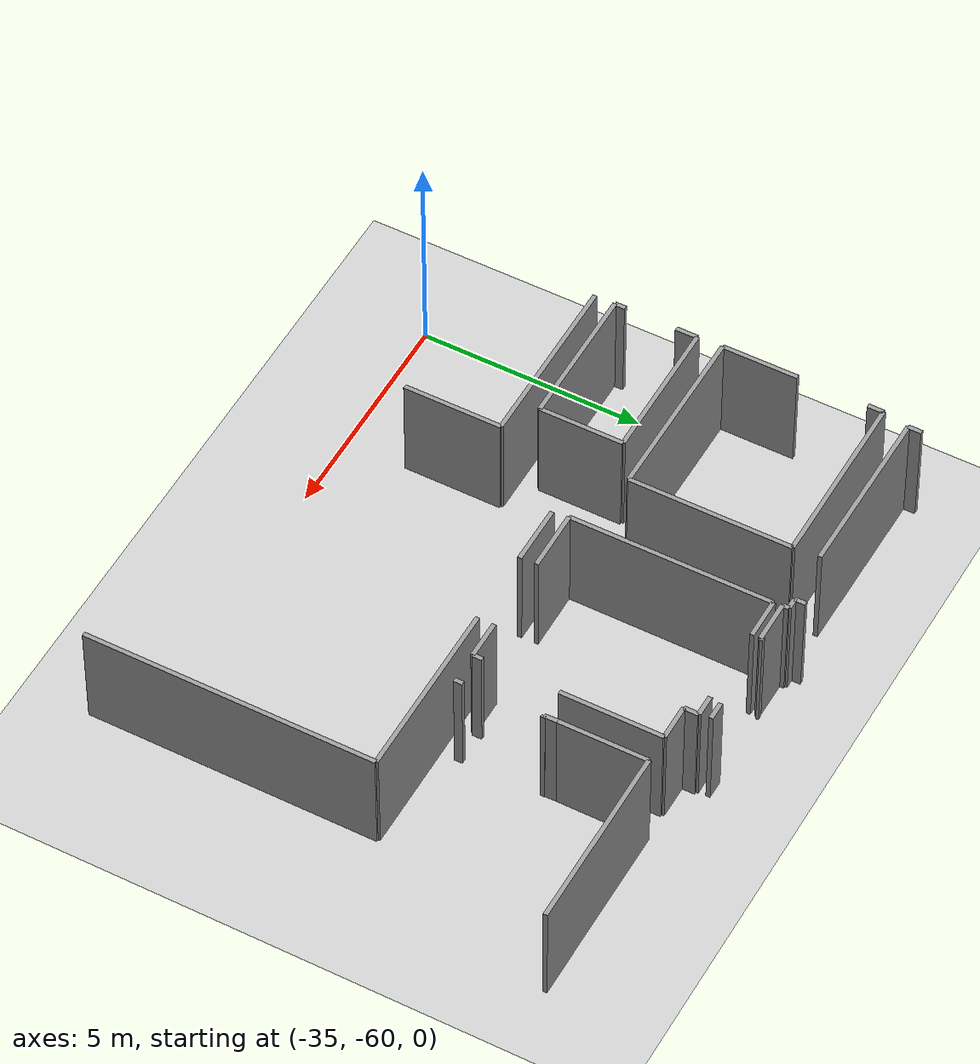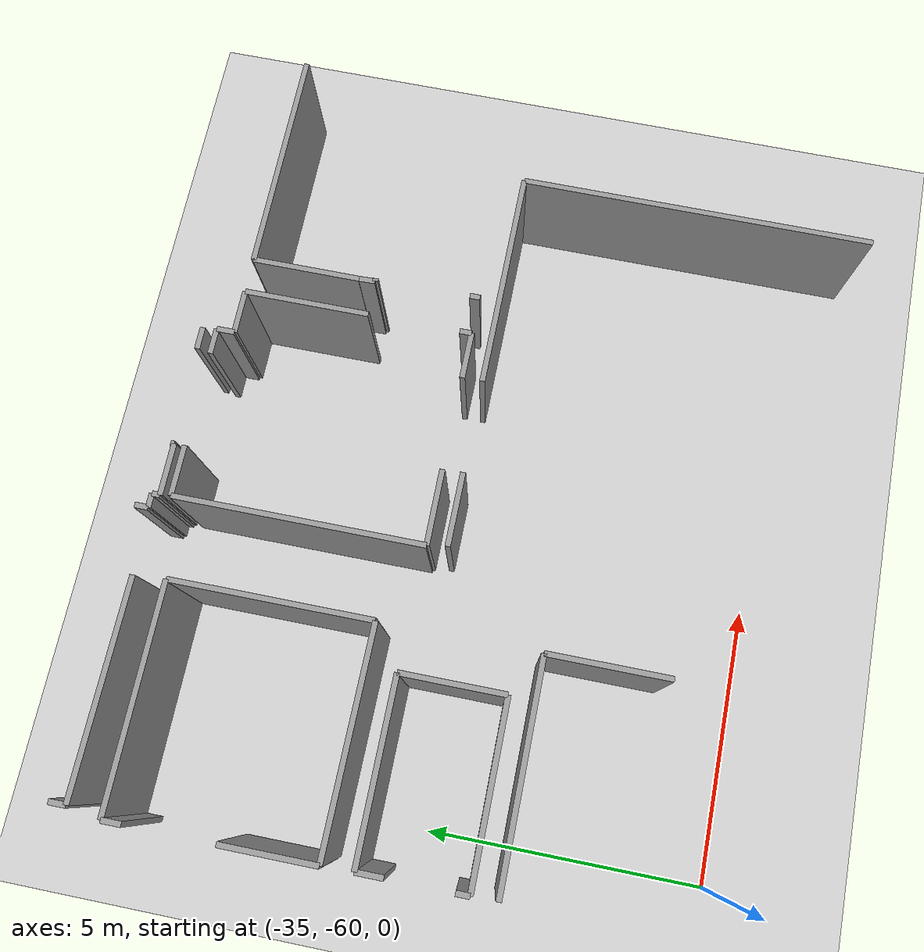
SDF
<sdf version="1.6">
 <world name="default">
  <model name="ground_plane">
   <static>1</static>
   <link name="link">
    <collision name="collision">
     <geometry><plane><normal>0 0 1</normal><size>100 100</size></plane></geometry>
     <surface><friction><ode><mu>100</mu><mu2>50</mu2></ode></friction></surface>
    </collision>
    <visual name="visual">
     <cast_shadows>0</cast_shadows>
     <geometry><plane><normal>0 0 1</normal><size>100 100</size></plane></geometry>
     <material>
      <script><uri>file://media/materials/scripts/gazebo.material</uri><name>Gazebo/Grey</name></script>
     </material>
    </visual>
   </link>
  </model>
  <model name="50036894">
   <static>1</static>
   <link name="Wall_139">
    <collision name="Wall_139_Collision">
     <geometry><box><size>0.302544237268 0.1 2.5</size></box></geometry>
     <pose>0.151272118634 0 1.25 0 0 0</pose>
    </collision>
    <visual name="Wall_139_Visual">
     <pose>0.151272118634 0 1.25 0 0 0</pose>
     <geometry><box><size>0.302544237268 0.1 2.5</size></box></geometry>
     <material>
      <script><uri>file://media/materials/scripts/gazebo.material</uri><name>Gazebo/Grey</name></script>
      <ambient>1 1 1 1</ambient>
     </material>
    </visual>
    <pose>87.1839674378 -116.604809515 0 0 0 1.57079632679</pose>
   </link>
   <link name="Wall_145">
    <collision name="Wall_145_Collision">
     <geometry><box><size>3.84345560179 0.1 2.5</size></box></geometry>
     <pose>1.92172780089 0 1.25 0 0 0</pose>
    </collision>
    <visual name="Wall_145_Visual">
     <pose>1.92172780089 0 1.25 0 0 0</pose>
     <geometry><box><size>3.84345560179 0.1 2.5</size></box></geometry>
     <material>
      <script><uri>file://media/materials/scripts/gazebo.material</uri><name>Gazebo/Grey</name></script>
      <ambient>1 1 1 1</ambient>
     </material>
    </visual>
    <pose>91.0272682893 -116.639299051 0 0 0 3.13261895848</pose>
   </link>
   <link name="Wall_157">
    <collision name="Wall_157_Collision">
     <geometry><box><size>1.70216003398 0.1 2.5</size></box></geometry>
     <pose>0.851080016991 0 1.25 0 0 0</pose>
    </collision>
    <visual name="Wall_157_Visual">
     <pose>0.851080016991 0 1.25 0 0 0</pose>
     <geometry><box><size>1.70216003398 0.1 2.5</size></box></geometry>
     <material>
      <script><uri>file://media/materials/scripts/gazebo.material</uri><name>Gazebo/Grey</name></script>
      <ambient>1 1 1 1</ambient>
     </material>
    </visual>
    <pose>87.0703548491 -120.841189635 0 0 0 1.57079632679</pose>
   </link>
   <link name="Wall_158">
    <collision name="Wall_158_Collision">
     <geometry><box><size>0.347938552834 0.1 2.5</size></box></geometry>
     <pose>0.173969276417 0 1.25 0 0 0</pose>
    </collision>
    <visual name="Wall_158_Visual">
     <pose>0.173969276417 0 1.25 0 0 0</pose>
     <geometry><box><size>0.347938552834 0.1 2.5</size></box></geometry>
     <material>
      <script><uri>file://media/materials/scripts/gazebo.material</uri><name>Gazebo/Grey</name></script>
      <ambient>1 1 1 1</ambient>
     </material>
    </visual>
    <pose>87.0703548491 -117.562908533 0 0 0 1.57079632679</pose>
   </link>
   <link name="Wall_159">
    <collision name="Wall_159_Collision">
     <geometry><box><size>3.99698216561 0.1 2.5</size></box></geometry>
     <pose>1.99849108281 0 1.25 0 0 0</pose>
    </collision>
    <visual name="Wall_159_Visual">
     <pose>1.99849108281 0 1.25 0 0 0</pose>
     <geometry><box><size>3.99698216561 0.1 2.5</size></box></geometry>
     <material>
      <script><uri>file://media/materials/scripts/gazebo.material</uri><name>Gazebo/Grey</name></script>
      <ambient>1 1 1 1</ambient>
     </material>
    </visual>
    <pose>87.0703548491 -117.21496998 0 0 0 0.0</pose>
   </link>
   <link name="Wall_160">
    <collision name="Wall_160_Collision">
     <geometry><box><size>3.65132600853 0.1 2.5</size></box></geometry>
     <pose>1.82566300427 0 1.25 0 0 0</pose>
    </collision>
    <visual name="Wall_160_Visual">
     <pose>1.82566300427 0 1.25 0 0 0</pose>
     <geometry><box><size>3.65132600853 0.1 2.5</size></box></geometry>
     <material>
      <script><uri>file://media/materials/scripts/gazebo.material</uri><name>Gazebo/Grey</name></script>
      <ambient>1 1 1 1</ambient>
     </material>
    </visual>
    <pose>91.0673370148 -117.21496998 0 0 0 -1.57079632679</pose>
   </link>
   <link name="Wall_161">
    <collision name="Wall_161_Collision">
     <geometry><box><size>3.99706101545 0.1 2.5</size></box></geometry>
     <pose>1.99853050772 0 1.25 0 0 0</pose>
    </collision>
    <visual name="Wall_161_Visual">
     <pose>1.99853050772 0 1.25 0 0 0</pose>
     <geometry><box><size>3.99706101545 0.1 2.5</size></box></geometry>
     <material>
      <script><uri>file://media/materials/scripts/gazebo.material</uri><name>Gazebo/Grey</name></script>
      <ambient>1 1 1 1</ambient>
     </material>
    </visual>
    <pose>91.0673370148 -120.866295989 0 0 0 3.13531140887</pose>
   </link>
   <link name="Wall_162">
    <collision name="Wall_162_Collision">
     <geometry><box><size>0.238383556607 0.1 2.5</size></box></geometry>
     <pose>0.119191778303 0 1.25 0 0 0</pose>
    </collision>
    <visual name="Wall_162_Visual">
     <pose>0.119191778303 0 1.25 0 0 0</pose>
     <geometry><box><size>0.238383556607 0.1 2.5</size></box></geometry>
     <material>
      <script><uri>file://media/materials/scripts/gazebo.material</uri><name>Gazebo/Grey</name></script>
      <ambient>1 1 1 1</ambient>
     </material>
    </visual>
    <pose>87.0926716076 -123.293750674 0 0 0 1.57079632679</pose>
   </link>
   <link name="Wall_163">
    <collision name="Wall_163_Collision">
     <geometry><box><size>0.483614300477 0.1 2.5</size></box></geometry>
     <pose>0.241807150239 0 1.25 0 0 0</pose>
    </collision>
    <visual name="Wall_163_Visual">
     <pose>0.241807150239 0 1.25 0 0 0</pose>
     <geometry><box><size>0.483614300477 0.1 2.5</size></box></geometry>
     <material>
      <script><uri>file://media/materials/scripts/gazebo.material</uri><name>Gazebo/Grey</name></script>
      <ambient>1 1 1 1</ambient>
     </material>
    </visual>
    <pose>87.0926716076 -121.891852481 0 0 0 1.57079632679</pose>
   </link>
   <link name="Wall_164">
    <collision name="Wall_164_Collision">
     <geometry><box><size>3.20093324626 0.1 2.5</size></box></geometry>
     <pose>1.60046662313 0 1.25 0 0 0</pose>
    </collision>
    <visual name="Wall_164_Visual">
     <pose>1.60046662313 0 1.25 0 0 0</pose>
     <geometry><box><size>3.20093324626 0.1 2.5</size></box></geometry>
     <material>
      <script><uri>file://media/materials/scripts/gazebo.material</uri><name>Gazebo/Grey</name></script>
      <ambient>1 1 1 1</ambient>
     </material>
    </visual>
    <pose>87.0926716076 -121.408238181 0 0 0 0.0</pose>
   </link>
   <link name="Wall_165">
    <collision name="Wall_165_Collision">
     <geometry><box><size>1.88424449531 0.1 2.5</size></box></geometry>
     <pose>0.942122247653 0 1.25 0 0 0</pose>
    </collision>
    <visual name="Wall_165_Visual">
     <pose>0.942122247653 0 1.25 0 0 0</pose>
     <geometry><box><size>1.88424449531 0.1 2.5</size></box></geometry>
     <material>
      <script><uri>file://media/materials/scripts/gazebo.material</uri><name>Gazebo/Grey</name></script>
      <ambient>1 1 1 1</ambient>
     </material>
    </visual>
    <pose>90.2936048539 -121.408238181 0 0 0 -1.57079632679</pose>
   </link>
   <link name="Wall_166">
    <collision name="Wall_166_Collision">
     <geometry><box><size>3.20093349741 0.1 2.5</size></box></geometry>
     <pose>1.60046674871 0 1.25 0 0 0</pose>
    </collision>
    <visual name="Wall_166_Visual">
     <pose>1.60046674871 0 1.25 0 0 0</pose>
     <geometry><box><size>3.20093349741 0.1 2.5</size></box></geometry>
     <material>
      <script><uri>file://media/materials/scripts/gazebo.material</uri><name>Gazebo/Grey</name></script>
      <ambient>1 1 1 1</ambient>
     </material>
    </visual>
    <pose>90.2936048539 -123.292482676 0 0 0 -3.14119651988</pose>
   </link>
   <link name="Wall_169">
    <collision name="Wall_169_Collision">
     <geometry><box><size>3.98531658731 0.1 2.5</size></box></geometry>
     <pose>1.99265829366 0 1.25 0 0 0</pose>
    </collision>
    <visual name="Wall_169_Visual">
     <pose>1.99265829366 0 1.25 0 0 0</pose>
     <geometry><box><size>3.98531658731 0.1 2.5</size></box></geometry>
     <material>
      <script><uri>file://media/materials/scripts/gazebo.material</uri><name>Gazebo/Grey</name></script>
      <ambient>1 1 1 1</ambient>
     </material>
    </visual>
    <pose>87.0944468043 -123.753780218 0 0 0 0.0</pose>
   </link>
   <link name="Wall_170">
    <collision name="Wall_170_Collision">
     <geometry><box><size>2.20631589625 0.1 2.5</size></box></geometry>
     <pose>1.10315794813 0 1.25 0 0 0</pose>
    </collision>
    <visual name="Wall_170_Visual">
     <pose>1.10315794813 0 1.25 0 0 0</pose>
     <geometry><box><size>2.20631589625 0.1 2.5</size></box></geometry>
     <material>
      <script><uri>file://media/materials/scripts/gazebo.material</uri><name>Gazebo/Grey</name></script>
      <ambient>1 1 1 1</ambient>
     </material>
    </visual>
    <pose>91.0797633916 -123.753780218 0 0 0 -1.57079632679</pose>
   </link>
   <link name="Wall_189">
    <collision name="Wall_189_Collision">
     <geometry><box><size>0.41438162925 0.1 2.5</size></box></geometry>
     <pose>0.207190814625 0 1.25 0 0 0</pose>
    </collision>
    <visual name="Wall_189_Visual">
     <pose>0.207190814625 0 1.25 0 0 0</pose>
     <geometry><box><size>0.41438162925 0.1 2.5</size></box></geometry>
     <material>
      <script><uri>file://media/materials/scripts/gazebo.material</uri><name>Gazebo/Grey</name></script>
      <ambient>1 1 1 1</ambient>
     </material>
    </visual>
    <pose>95.6202093464 -116.658319016 0 0 0 3.14159265359</pose>
   </link>
   <link name="Wall_190">
    <collision name="Wall_190_Collision">
     <geometry><box><size>0.064921479246 0.1 2.5</size></box></geometry>
     <pose>0.032460739623 0 1.25 0 0 0</pose>
    </collision>
    <visual name="Wall_190_Visual">
     <pose>0.032460739623 0 1.25 0 0 0</pose>
     <geometry><box><size>0.064921479246 0.1 2.5</size></box></geometry>
     <material>
      <script><uri>file://media/materials/scripts/gazebo.material</uri><name>Gazebo/Grey</name></script>
      <ambient>1 1 1 1</ambient>
     </material>
    </visual>
    <pose>93.4095822582 -116.658319016 0 0 0 -1.57079632679</pose>
   </link>
   <link name="Wall_191">
    <collision name="Wall_191_Collision">
     <geometry><box><size>0.942883046238 0.1 2.5</size></box></geometry>
     <pose>0.471441523119 0 1.25 0 0 0</pose>
    </collision>
    <visual name="Wall_191_Visual">
     <pose>0.471441523119 0 1.25 0 0 0</pose>
     <geometry><box><size>0.942883046238 0.1 2.5</size></box></geometry>
     <material>
      <script><uri>file://media/materials/scripts/gazebo.material</uri><name>Gazebo/Grey</name></script>
      <ambient>1 1 1 1</ambient>
     </material>
    </visual>
    <pose>93.4095822582 -116.723240495 0 0 0 3.14159265359</pose>
   </link>
   <link name="Wall_192">
    <collision name="Wall_192_Collision">
     <geometry><box><size>0.142522934907 0.1 2.5</size></box></geometry>
     <pose>0.0712614674537 0 1.25 0 0 0</pose>
    </collision>
    <visual name="Wall_192_Visual">
     <pose>0.0712614674537 0 1.25 0 0 0</pose>
     <geometry><box><size>0.142522934907 0.1 2.5</size></box></geometry>
     <material>
      <script><uri>file://media/materials/scripts/gazebo.material</uri><name>Gazebo/Grey</name></script>
      <ambient>1 1 1 1</ambient>
     </material>
    </visual>
    <pose>92.4666992119 -116.723240495 0 0 0 1.57079632679</pose>
   </link>
   <link name="Wall_193">
    <collision name="Wall_193_Collision">
     <geometry><box><size>0.252077931135 0.1 2.5</size></box></geometry>
     <pose>0.126038965568 0 1.25 0 0 0</pose>
    </collision>
    <visual name="Wall_193_Visual">
     <pose>0.126038965568 0 1.25 0 0 0</pose>
     <geometry><box><size>0.252077931135 0.1 2.5</size></box></geometry>
     <material>
      <script><uri>file://media/materials/scripts/gazebo.material</uri><name>Gazebo/Grey</name></script>
      <ambient>1 1 1 1</ambient>
     </material>
    </visual>
    <pose>92.4666992119 -116.58071756 0 0 0 3.14159265359</pose>
   </link>
   <link name="Wall_194">
    <collision name="Wall_194_Collision">
     <geometry><box><size>0.241173151418 0.1 2.5</size></box></geometry>
     <pose>0.120586575709 0 1.25 0 0 0</pose>
    </collision>
    <visual name="Wall_194_Visual">
     <pose>0.120586575709 0 1.25 0 0 0</pose>
     <geometry><box><size>0.241173151418 0.1 2.5</size></box></geometry>
     <material>
      <script><uri>file://media/materials/scripts/gazebo.material</uri><name>Gazebo/Grey</name></script>
      <ambient>1 1 1 1</ambient>
     </material>
    </visual>
    <pose>92.2146212808 -116.58071756 0 0 0 1.57079632679</pose>
   </link>
   <link name="Wall_197">
    <collision name="Wall_197_Collision">
     <geometry><box><size>4.53131637175 0.1 2.5</size></box></geometry>
     <pose>2.26565818588 0 1.25 0 0 0</pose>
    </collision>
    <visual name="Wall_197_Visual">
     <pose>2.26565818588 0 1.25 0 0 0</pose>
     <geometry><box><size>4.53131637175 0.1 2.5</size></box></geometry>
     <material>
      <script><uri>file://media/materials/scripts/gazebo.material</uri><name>Gazebo/Grey</name></script>
      <ambient>1 1 1 1</ambient>
     </material>
    </visual>
    <pose>92.4945951601 -121.441713318 0 0 0 1.57079632679</pose>
   </link>
   <link name="Wall_198">
    <collision name="Wall_198_Collision">
     <geometry><box><size>0.92158068586 0.1 2.5</size></box></geometry>
     <pose>0.46079034293 0 1.25 0 0 0</pose>
    </collision>
    <visual name="Wall_198_Visual">
     <pose>0.46079034293 0 1.25 0 0 0</pose>
     <geometry><box><size>0.92158068586 0.1 2.5</size></box></geometry>
     <material>
      <script><uri>file://media/materials/scripts/gazebo.material</uri><name>Gazebo/Grey</name></script>
      <ambient>1 1 1 1</ambient>
     </material>
    </visual>
    <pose>92.4945951601 -116.910396947 0 0 0 0.0</pose>
   </link>
   <link name="Wall_199">
    <collision name="Wall_199_Collision">
     <geometry><box><size>0.479049508968 0.1 2.5</size></box></geometry>
     <pose>0.239524754484 0 1.25 0 0 0</pose>
    </collision>
    <visual name="Wall_199_Visual">
     <pose>0.239524754484 0 1.25 0 0 0</pose>
     <geometry><box><size>0.479049508968 0.1 2.5</size></box></geometry>
     <material>
      <script><uri>file://media/materials/scripts/gazebo.material</uri><name>Gazebo/Grey</name></script>
      <ambient>1 1 1 1</ambient>
     </material>
    </visual>
    <pose>95.1649981931 -116.910396947 0 0 0 0.0</pose>
   </link>
   <link name="Wall_200">
    <collision name="Wall_200_Collision">
     <geometry><box><size>0.324860995759 0.1 2.5</size></box></geometry>
     <pose>0.162430497879 0 1.25 0 0 0</pose>
    </collision>
    <visual name="Wall_200_Visual">
     <pose>0.162430497879 0 1.25 0 0 0</pose>
     <geometry><box><size>0.324860995759 0.1 2.5</size></box></geometry>
     <material>
      <script><uri>file://media/materials/scripts/gazebo.material</uri><name>Gazebo/Grey</name></script>
      <ambient>1 1 1 1</ambient>
     </material>
    </visual>
    <pose>95.6440477021 -116.910396947 0 0 0 -1.57079632679</pose>
   </link>
   <link name="Wall_201">
    <collision name="Wall_201_Collision">
     <geometry><box><size>0.806953699066 0.1 2.5</size></box></geometry>
     <pose>0.403476849533 0 1.25 0 0 0</pose>
    </collision>
    <visual name="Wall_201_Visual">
     <pose>0.403476849533 0 1.25 0 0 0</pose>
     <geometry><box><size>0.806953699066 0.1 2.5</size></box></geometry>
     <material>
      <script><uri>file://media/materials/scripts/gazebo.material</uri><name>Gazebo/Grey</name></script>
      <ambient>1 1 1 1</ambient>
     </material>
    </visual>
    <pose>95.6440477021 -117.235257942 0 0 0 0.0</pose>
   </link>
   <link name="Wall_202">
    <collision name="Wall_202_Collision">
     <geometry><box><size>2.2945685321 0.1 2.5</size></box></geometry>
     <pose>1.14728426605 0 1.25 0 0 0</pose>
    </collision>
    <visual name="Wall_202_Visual">
     <pose>1.14728426605 0 1.25 0 0 0</pose>
     <geometry><box><size>2.2945685321 0.1 2.5</size></box></geometry>
     <material>
      <script><uri>file://media/materials/scripts/gazebo.material</uri><name>Gazebo/Grey</name></script>
      <ambient>1 1 1 1</ambient>
     </material>
    </visual>
    <pose>96.4510014011 -117.235257942 0 0 0 -1.57079632679</pose>
   </link>
   <link name="Wall_203">
    <collision name="Wall_203_Collision">
     <geometry><box><size>0.217334795757 0.1 2.5</size></box></geometry>
     <pose>0.108667397879 0 1.25 0 0 0</pose>
    </collision>
    <visual name="Wall_203_Visual">
     <pose>0.108667397879 0 1.25 0 0 0</pose>
     <geometry><box><size>0.217334795757 0.1 2.5</size></box></geometry>
     <material>
      <script><uri>file://media/materials/scripts/gazebo.material</uri><name>Gazebo/Grey</name></script>
      <ambient>1 1 1 1</ambient>
     </material>
    </visual>
    <pose>96.4510014011 -121.217024136 0 0 0 -1.57079632679</pose>
   </link>
   <link name="Wall_204">
    <collision name="Wall_204_Collision">
     <geometry><box><size>0.859956000482 0.1 2.5</size></box></geometry>
     <pose>0.429978000241 0 1.25 0 0 0</pose>
    </collision>
    <visual name="Wall_204_Visual">
     <pose>0.429978000241 0 1.25 0 0 0</pose>
     <geometry><box><size>0.859956000482 0.1 2.5</size></box></geometry>
     <material>
      <script><uri>file://media/materials/scripts/gazebo.material</uri><name>Gazebo/Grey</name></script>
      <ambient>1 1 1 1</ambient>
     </material>
    </visual>
    <pose>96.4510014011 -121.434358932 0 0 0 3.14159265359</pose>
   </link>
   <link name="Wall_205">
    <collision name="Wall_205_Collision">
     <geometry><box><size>1.37173956349 0.1 2.5</size></box></geometry>
     <pose>0.685869781745 0 1.25 0 0 0</pose>
    </collision>
    <visual name="Wall_205_Visual">
     <pose>0.685869781745 0 1.25 0 0 0</pose>
     <geometry><box><size>1.37173956349 0.1 2.5</size></box></geometry>
     <material>
      <script><uri>file://media/materials/scripts/gazebo.material</uri><name>Gazebo/Grey</name></script>
      <ambient>1 1 1 1</ambient>
     </material>
    </visual>
    <pose>93.8663150087 -121.434358932 0 0 0 -3.13623127031</pose>
   </link>
   <link name="Wall_206">
    <collision name="Wall_206_Collision">
     <geometry><box><size>1.98264111229 0.1 2.5</size></box></geometry>
     <pose>0.991320556144 0 1.25 0 0 0</pose>
    </collision>
    <visual name="Wall_206_Visual">
     <pose>0.991320556144 0 1.25 0 0 0</pose>
     <geometry><box><size>1.98264111229 0.1 2.5</size></box></geometry>
     <material>
      <script><uri>file://media/materials/scripts/gazebo.material</uri><name>Gazebo/Grey</name></script>
      <ambient>1 1 1 1</ambient>
     </material>
    </visual>
    <pose>97.0933690063 -119.212066266 0 0 0 1.57079632679</pose>
   </link>
   <link name="Wall_207">
    <collision name="Wall_207_Collision">
     <geometry><box><size>4.16714744911 0.1 2.5</size></box></geometry>
     <pose>2.08357372455 0 1.25 0 0 0</pose>
    </collision>
    <visual name="Wall_207_Visual">
     <pose>2.08357372455 0 1.25 0 0 0</pose>
     <geometry><box><size>4.16714744911 0.1 2.5</size></box></geometry>
     <material>
      <script><uri>file://media/materials/scripts/gazebo.material</uri><name>Gazebo/Grey</name></script>
      <ambient>1 1 1 1</ambient>
     </material>
    </visual>
    <pose>97.0933690063 -117.229425153 0 0 0 0.0</pose>
   </link>
   <link name="Wall_210">
    <collision name="Wall_210_Collision">
     <geometry><box><size>0.188424449531 0.1 2.5</size></box></geometry>
     <pose>0.0942122247653 0 1.25 0 0 0</pose>
    </collision>
    <visual name="Wall_210_Visual">
     <pose>0.0942122247653 0 1.25 0 0 0</pose>
     <geometry><box><size>0.188424449531 0.1 2.5</size></box></geometry>
     <material>
      <script><uri>file://media/materials/scripts/gazebo.material</uri><name>Gazebo/Grey</name></script>
      <ambient>1 1 1 1</ambient>
     </material>
    </visual>
    <pose>97.1570224879 -121.448814105 0 0 0 1.57079632679</pose>
   </link>
   <link name="Wall_211">
    <collision name="Wall_211_Collision">
     <geometry><box><size>0.054016699529 0.1 2.5</size></box></geometry>
     <pose>0.0270083497645 0 1.25 0 0 0</pose>
    </collision>
    <visual name="Wall_211_Visual">
     <pose>0.0270083497645 0 1.25 0 0 0</pose>
     <geometry><box><size>0.054016699529 0.1 2.5</size></box></geometry>
     <material>
      <script><uri>file://media/materials/scripts/gazebo.material</uri><name>Gazebo/Grey</name></script>
      <ambient>1 1 1 1</ambient>
     </material>
    </visual>
    <pose>97.1570224879 -119.509031313 0 0 0 3.14159265359</pose>
   </link>
   <link name="Wall_212">
    <collision name="Wall_212_Collision">
     <geometry><box><size>0.297121367612 0.1 2.5</size></box></geometry>
     <pose>0.148560683806 0 1.25 0 0 0</pose>
    </collision>
    <visual name="Wall_212_Visual">
     <pose>0.148560683806 0 1.25 0 0 0</pose>
     <geometry><box><size>0.297121367612 0.1 2.5</size></box></geometry>
     <material>
      <script><uri>file://media/materials/scripts/gazebo.material</uri><name>Gazebo/Grey</name></script>
      <ambient>1 1 1 1</ambient>
     </material>
    </visual>
    <pose>97.1030057884 -119.509031313 0 0 0 1.60323583973</pose>
   </link>
   <link name="Wall_214">
    <collision name="Wall_214_Collision">
     <geometry><box><size>1.33723031275 0.1 2.5</size></box></geometry>
     <pose>0.668615156376 0 1.25 0 0 0</pose>
    </collision>
    <visual name="Wall_214_Visual">
     <pose>0.668615156376 0 1.25 0 0 0</pose>
     <geometry><box><size>1.33723031275 0.1 2.5</size></box></geometry>
     <material>
      <script><uri>file://media/materials/scripts/gazebo.material</uri><name>Gazebo/Grey</name></script>
      <ambient>1 1 1 1</ambient>
     </material>
    </visual>
    <pose>92.5448078667 -121.799288653 0 0 0 0.0</pose>
   </link>
   <link name="Wall_215">
    <collision name="Wall_215_Collision">
     <geometry><box><size>4.03578289344 0.1 2.5</size></box></geometry>
     <pose>2.01789144672 0 1.25 0 0 0</pose>
    </collision>
    <visual name="Wall_215_Visual">
     <pose>2.01789144672 0 1.25 0 0 0</pose>
     <geometry><box><size>4.03578289344 0.1 2.5</size></box></geometry>
     <material>
      <script><uri>file://media/materials/scripts/gazebo.material</uri><name>Gazebo/Grey</name></script>
      <ambient>1 1 1 1</ambient>
     </material>
    </visual>
    <pose>95.5935813959 -121.799288653 0 0 0 0.0</pose>
   </link>
   <link name="Wall_216">
    <collision name="Wall_216_Collision">
     <geometry><box><size>6.53449904583 0.1 2.5</size></box></geometry>
     <pose>3.26724952292 0 1.25 0 0 0</pose>
    </collision>
    <visual name="Wall_216_Visual">
     <pose>3.26724952292 0 1.25 0 0 0</pose>
     <geometry><box><size>6.53449904583 0.1 2.5</size></box></geometry>
     <material>
      <script><uri>file://media/materials/scripts/gazebo.material</uri><name>Gazebo/Grey</name></script>
      <ambient>1 1 1 1</ambient>
     </material>
    </visual>
    <pose>99.6293642894 -121.799288653 0 0 0 -1.57079632679</pose>
   </link>
   <pose>-122.8 67.3347215794 0 0 0 0</pose>
  </model>
 </world>
</sdf>
